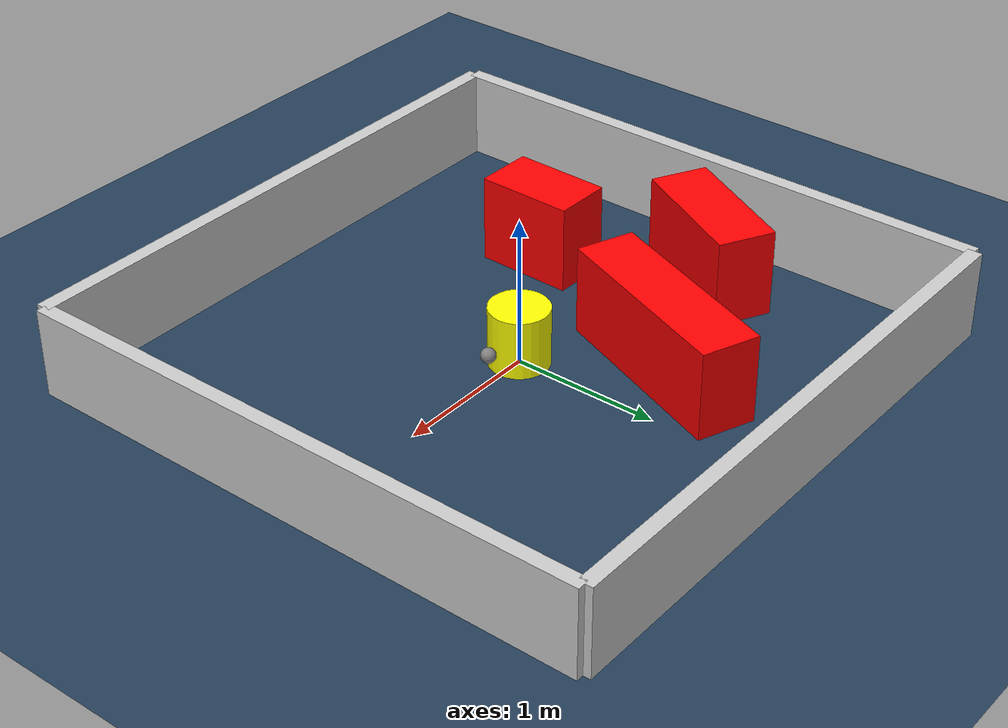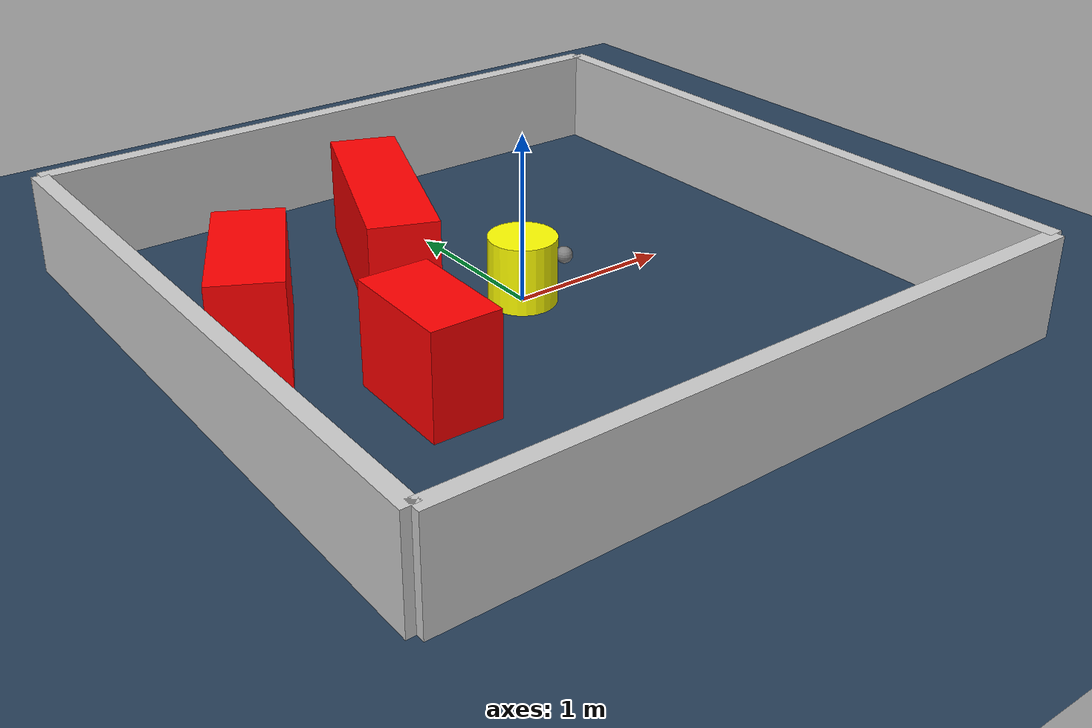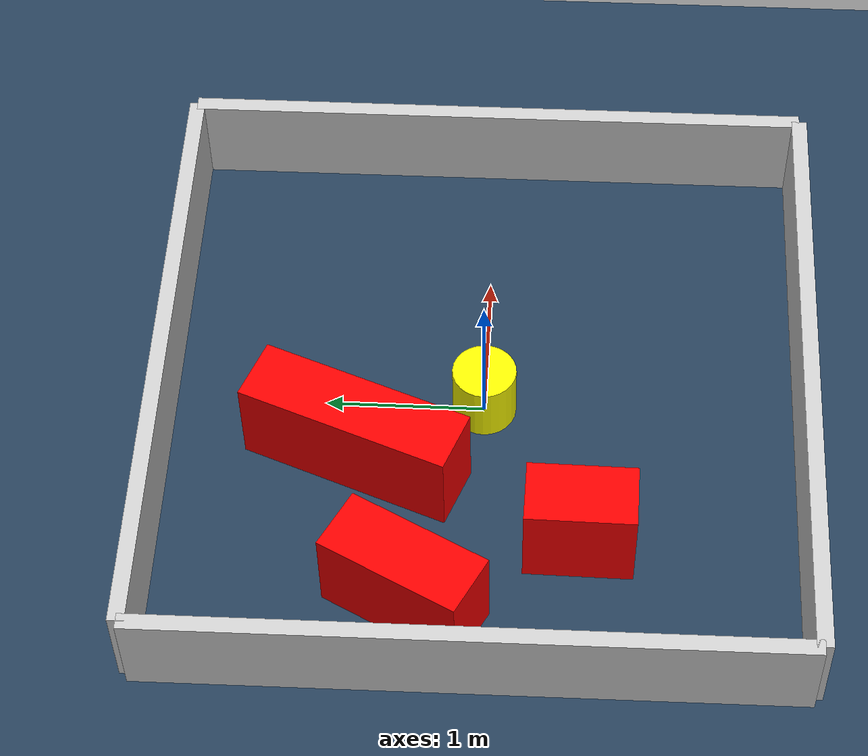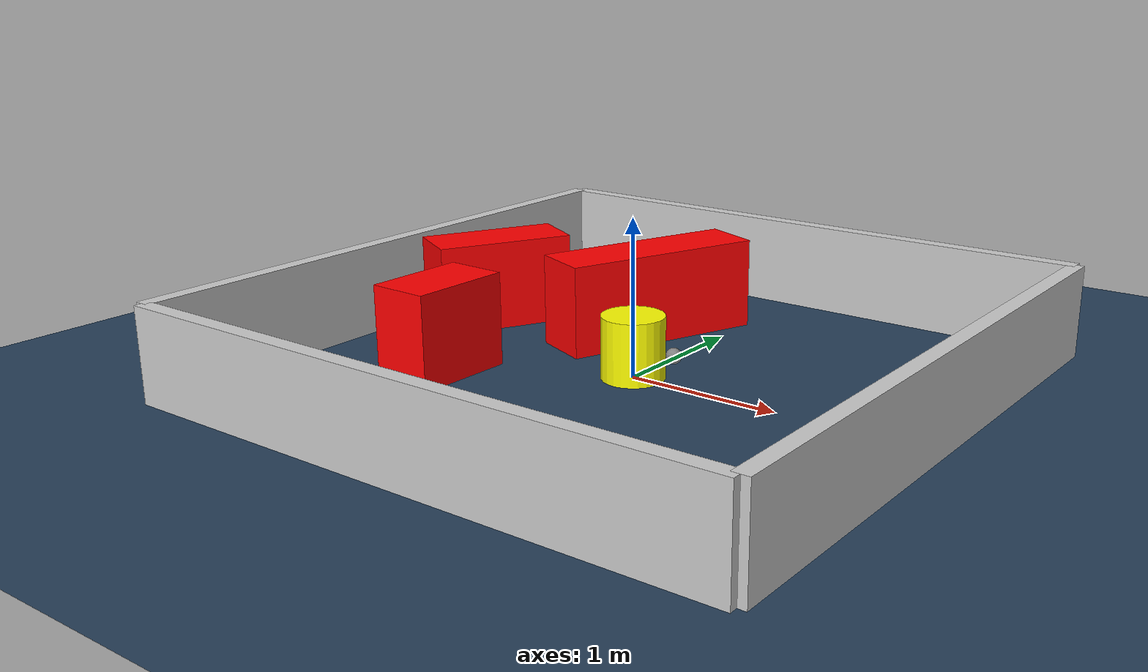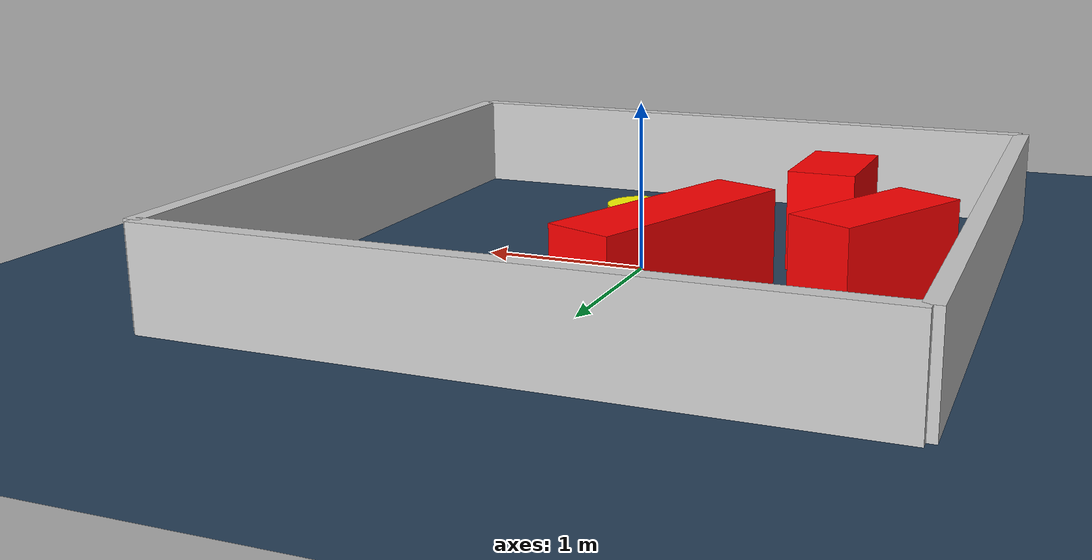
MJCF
<?xml version="1.0" ?>
<mujoco model="generated_environment">
  <option timestep="0.01" integrator="RK4" cone="elliptic"/>
  <default>
    <geom density="1"/>
  </default>
  <asset>
    <texture builtin="gradient" height="3072" rgb1="0.3 0.5 0.7" rgb2="0 0 0" type="skybox" width="512"/>
    <texture builtin="checker" height="300" mark="edge" markrgb="0.8 0.8 0.8" name="groundplane" rgb1="0.2 0.3 0.4" rgb2="0.1 0.2 0.3" type="2d" width="300"/>
    <material name="groundplane" reflectance="0.2" texrepeat="5 5" texture="groundplane" texuniform="true"/>
    <material name="robot" rgba="0.0 1.0 0.0 1"/>
  </asset>
  <worldbody>
    <light dir="0 0 -1" directional="true" pos="0 0 1.5"/>
    <geom condim="4" friction="1.0 0.005 0.001" material="groundplane" name="floor" size="0 0 0.05" type="plane"/>
    <body name="walls">
      <geom name="wall_1" condim="4" pos="-2.0 0.0 0.3" rgba="0.800000011920929 0.800000011920929 0.800000011920929 1.0" size="0.05 2.0 0.3" type="box"/>
      <geom name="wall_2" condim="4" pos="2.0 0.0 0.3" rgba="0.800000011920929 0.800000011920929 0.800000011920929 1.0" size="0.05 2.0 0.3" type="box"/>
      <geom name="wall_3" condim="4" pos="0.0 -2.0 0.3" rgba="0.800000011920929 0.800000011920929 0.800000011920929 1.0" size="2.0 0.05 0.3" type="box"/>
      <geom name="wall_4" condim="4" pos="0.0 2.0 0.3" rgba="0.800000011920929 0.800000011920929 0.800000011920929 1.0" size="2.0 0.05 0.3" type="box"/>
    </body>
    <body name="robot">
      <joint name="joint_x" type="slide" pos="0 0 0" axis="1 0 0"/>
      <joint name="joint_y" type="slide" pos="0 0 0" axis="0 1 0"/>
      <geom name="robot" type="sphere" pos="0.3 0.0 0.2" size="0.05" mass="5." friction="1.0 0.005 0.0001" condim="4" rgba="0.5 0.5 0.5 1.0"/>
      <site name="sensor_ball"/>
    </body>
    <body name="obstacle_movable_1">
      <geom name="obstacle_movable_1" condim="4" pos="0.0 0.0 0.2" euler="0 0 0.0" friction="1.0 0.005 0.001" rgba="1.0 1.0 0.0 1.0" size="0.2 0.2 0.0" type="cylinder" mass="0.1"/>
      <joint type="free"/>
    </body>
    <body name="obstacle_2_static">
      <geom name="obstacle_2_static" condim="4" pos="-1.469148088355344 0.41042332048462904 0.3" euler="0 0 242.2942650923219" friction="1.0 0.005 0.001" rgba="1 0 0 1" size="0.4625684310303344 0.2 0.3" type="box"/>
    </body>
    <body name="obstacle_3_static">
      <geom name="obstacle_3_static" condim="4" pos="-0.4370663258335131 0.7714719039125224 0.3" euler="0 0 248.68971895706008" friction="1.0 0.005 0.001" rgba="1 0 0 1" size="0.6822293771410644 0.2 0.3" type="box"/>
    </body>
    <body name="obstacle_4_static">
      <geom name="obstacle_4_static" condim="4" pos="-1.0212555452710368 -0.6164116979013525 0.3" euler="0 0 88.93040826396103" friction="1.0 0.005 0.001" rgba="1 0 0 1" size="0.33458160979899454 0.2 0.3" type="box"/>
    </body>
  </worldbody>
  <actuator>
    <motor name="actuator_x" joint="joint_x" gear="1" ctrlrange="-1 1"/>
    <motor name="actuator_y" joint="joint_y" gear="1" ctrlrange="-1 1"/>
  </actuator>
</mujoco>
